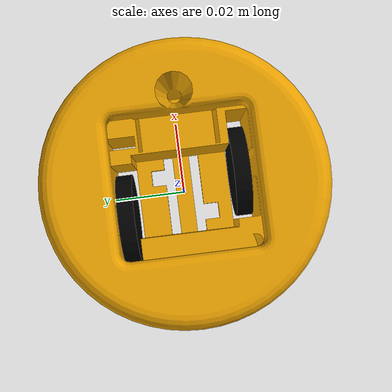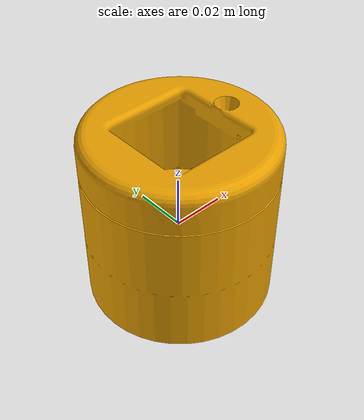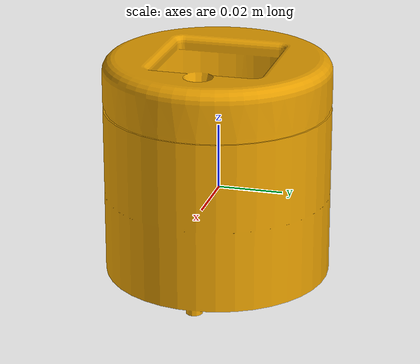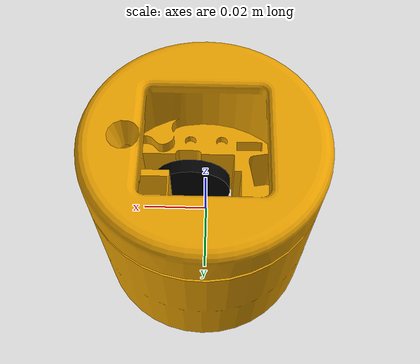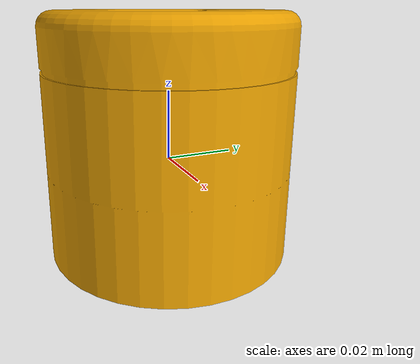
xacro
<?xml version="1.0"?>
<robot name="blackhawk" xmlns:xacro="http://ros.org/wiki/xacro">

  <!-- Values for different components of the robot-->
  <xacro:property name="wheel_mass" value="0.00368"/>
  <xacro:property name="wheel_separation" value="0.018"/> <!-- side by side separation from center -->
  <xacro:property name="wheel_diameter" value="0.028"/>
  <xacro:property name="wheel_width" value="0.005"/>
  <xacro:property name="wheel_standoff" value="0.0055"/> <!-- forward/backward offset from center -->
  <xacro:property name="body_mass" value="0.19044"/> <!-- weighed bot = 0.19784; subtract wheels (2*wheel_mass) -->
  <xacro:property name="body_length" value="0.0766"/>
  <xacro:property name="body_width" value="0.0697"/>

  <xacro:property name="PI" value="3.1415926535897931"/>

  <xacro:include filename="$(find swarm_description)/urdf/macros.xacro"/>

  <!-- This is here to give RVIS a fixed global frame -->

  <!-- Main link for the robot_description -->

  <link name="base_link">
    <!-- visual -->
    <visual>
      <origin xyz="0 0 0" rpy="0 0 0"/>
	    <xacro:body/>
    </visual>

    <!-- inertial & collision -->
    <collision>
      <origin xyz="0 0 0" rpy="0 0 0"/>
        <xacro:body/>
      </collision>

    <inertial>
      <origin xyz="0 0 0" rpy="0 0 0"/>
      <xacro:body_inertial/>
    </inertial>
  </link>

  <!-- Wheel geometries -->
  <link name="left_wheel">
    <visual>
      <origin xyz="0 0 0" rpy="0 0 0"/>
      <xacro:wheel_geometry/>
      <material name="black">
        <color rgba="0.0 0.0 0.0 1.0"/>
      </material>
    </visual>

    <collision>
      <origin xyz="0 0 0" rpy="0 0 0"/>
      <xacro:wheel_geometry/>
    </collision>

    <inertial>
      <origin xyz="0 0 0" rpy="0 0 0"/>
      <xacro:wheel_inertial/>
    </inertial>
  </link>

  <link name="right_wheel">
    <visual>
      <origin xyz="0 0 0" rpy="0 0 0"/>
      <xacro:wheel_geometry/>
      <material name="black">
        <color rgba="0.0 0.0 0.0 1.0"/>
      </material>
    </visual>

    <collision>
      <origin xyz="0 0 0" rpy="0 0 0"/>
      <xacro:wheel_geometry/>
    </collision>

    <inertial>
      <origin xyz="0 0 0" rpy="0 0 0"/>
      <xacro:wheel_inertial/>
    </inertial>
  </link>

  <!-- wheel joints -->
  <joint name="base_link_to_left_wheel" type="continuous">
    <origin xyz="${wheel_standoff} -${wheel_separation} -0.017" rpy="${PI/2} 0 0" />
    <child link="left_wheel" />
    <parent link="base_link" />
    <axis xyz="0 0 1"/>
  </joint>

  <joint name="base_link_to_right_wheel" type="continuous">
    <origin xyz="-${wheel_standoff} ${wheel_separation} -0.017" rpy="-${PI/2} 0 0" />
    <child link="right_wheel"/>
    <parent link="base_link"/>
    <axis xyz="0 0 1"/>
  </joint>

  <!-- Using separate file to set up Gazebo properties and plugins -->
  <xacro:include filename="$(find swarm_description)/urdf/blackhawk_standalone.gazebo"/>

  <!-- Setting up transmissions for differential driving -->
  <xacro:mk_transmission joint="base_link_to_right_wheel"/>
  <xacro:mk_transmission joint="base_link_to_left_wheel"/>

</robot>

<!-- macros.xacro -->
<robot name="blackhawk" xmlns:xacro="http://ros.org/wiki/xacro">

  <!-- Body geometry macro -->
  <xacro:macro name="body">
    <geometry>
      <mesh filename="package://swarm_description/meshes/Blackhawk_Full_resized.dae"/>
    </geometry>
  </xacro:macro>

  <xacro:macro name="body_inertial">
    <mass value="${body_mass}"/>
    <inertia ixx="0.000150942" ixy="0.0" ixz="0.0" iyy="0.000150942" iyz="0.0" izz="0.000115647"/>
  </xacro:macro>

  <!-- Wheel geometry macro -->
  <xacro:macro name="wheel_geometry">
    <geometry>
      <cylinder length="${wheel_width}" radius="${wheel_diameter / 2}"/>
    </geometry>
  </xacro:macro>

  <xacro:macro name="wheel_inertial">
    <mass value="${wheel_mass}" />
    <inertia ixx="1.88e-7"   ixy="0"     ixz="0"
                          iyy="1.88e-7"  iyz="0"
                                      izz="3.61e-7" />
  </xacro:macro>

  <!-- transmission macros -->
  <xacro:macro name="mk_transmission" params="joint">
    <transmission name="${joint}_transmission">
      <type>transmission_interface/SimpleTransmission</type>
      <joint name="${joint}">
        <hardwareInterface>hardware_interface/EffortJointInterface</hardwareInterface>
      </joint>
      <actuator name="${joint}_actuator">
        <mechanicalReduction>1</mechanicalReduction>
        <hardwareInterface>hardware_interface/EffortJointInterface</hardwareInterface>
      </actuator>
    </transmission>
  </xacro:macro>

</robot>
